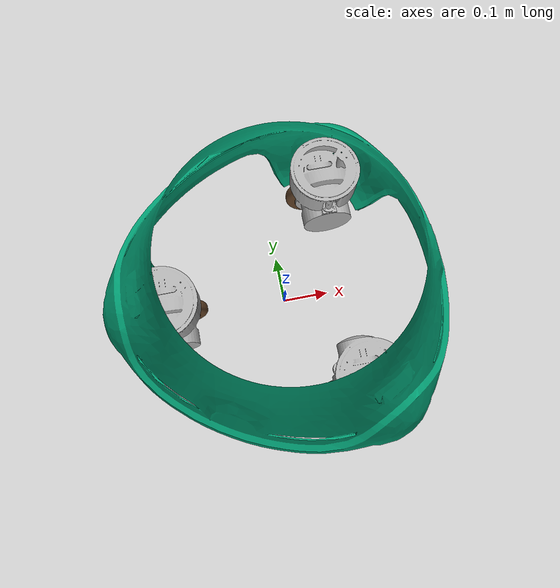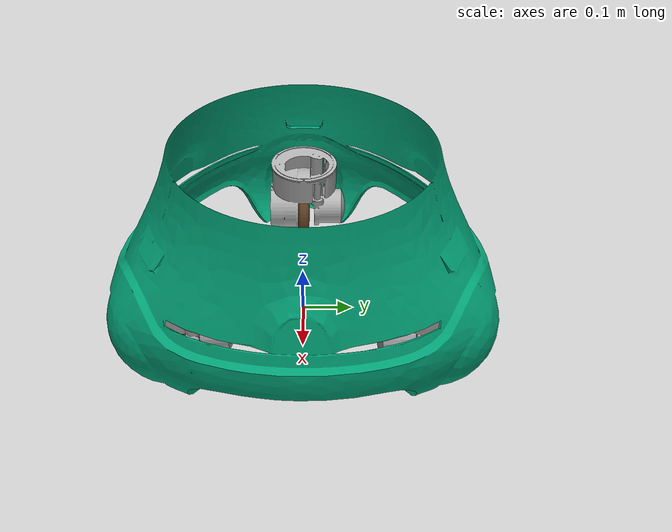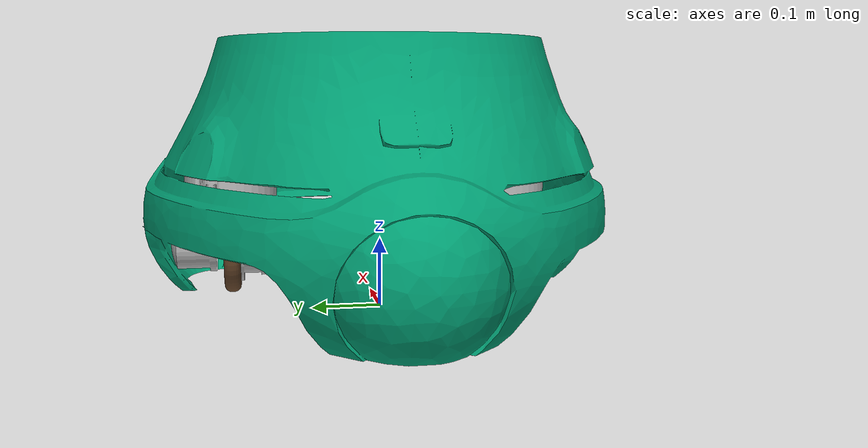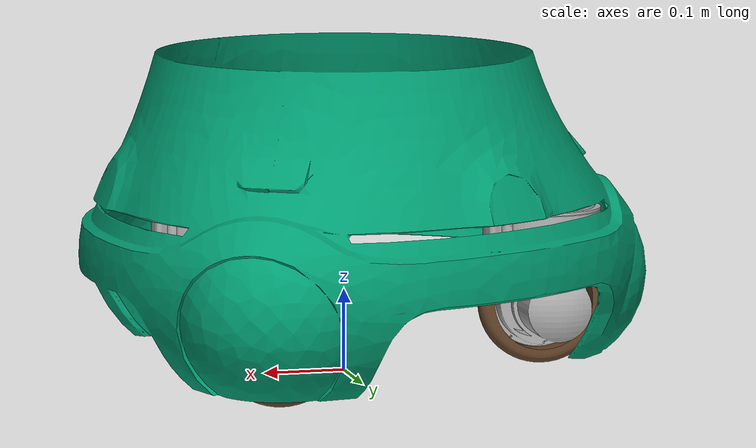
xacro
<?xml version="1.0"?>
<robot xmlns:xacro="http://www.ros.org/wiki/xacro"
       name="cob4-6" >

  <!-- common stuff -->
  <xacro:include filename="$(find simulator_setup)/robot/cob4/cob_description/urdf/common.xacro" />
  <xacro:include filename="$(find simulator_setup)/robot/cob4/cob_description/urdf/materials.urdf.xacro" />

  <!-- calibration -->
  <xacro:include filename="$(find simulator_setup)/robot/cob4/robots/cob4-6/urdf/properties.urdf.xacro" />

  <!-- base -->
  <xacro:include filename="$(find simulator_setup)/robot/cob4/cob_description/urdf/cob4_base/base.urdf.xacro" />

  <!-- composition of the robot -->
  <xacro:base name="base"/>

</robot>

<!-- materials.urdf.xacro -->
<robot xmlns:xacro="http://www.ros.org/wiki/xacro">

  <material name="IPA/LightGrey">
    <color rgba="0.7 0.7 0.7 1.0"/>
  </material>

  <material name="IPA/DarkGrey">
    <color rgba="0.4 0.4 0.4 1.0"/>
  </material>

  <material name="IPA/Black">
    <color rgba="0.0 0.0 0.0 1.0"/>
  </material>

  <material name="IPA/Metall">
    <color rgba="0.7 0.7 0.7 1.0"/>
  </material>

  <material name="IPA/YellowRubber">
    <color rgba="0.4 0.27 0.16 1.0"/>
  </material>

  <material name="IPA/Orange">
    <color rgba="1.0 0.4 0.0 1.0"/>
  </material>

  <material name="IPA/Blue">
    <color rgba="0.0 0.0 0.5 1.0"/>
  </material>

</robot>

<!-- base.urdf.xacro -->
<robot xmlns:xacro="http://www.ros.org/wiki/xacro">

  <xacro:include filename="$(find simulator_setup)/robot/cob4/cob_description/urdf/cob4_base/base.gazebo.xacro" />

  <!-- drive_wheel module -->
  <xacro:include filename="$(find simulator_setup)/robot/cob4/cob_description/urdf/drive_wheel/drive_wheel.urdf.xacro" />

  <!-- properties -->
  <xacro:property name="caster_offset_x" value="0.24844" />  <!--modify here-->
  <xacro:property name="caster_offset_y" value="0.21515" />
  <xacro:property name="caster_offset_z" value="0.0782" />

  <xacro:property name="base_mass" value="100" />

  <xacro:macro name="base" params="name tricycle_mode:=false forward:=true">

    <xacro:property name="drive_vel" value="19.95" />
    <xacro:property name="steer_vel" value="12.00" /> <!-- Controller: 10.0, Driver: 12.0, Elmo: 15.0 -->

    <xacro:if value="${tricycle_mode}">
      <link name="${name}_pivot_link"/>

      <xacro:if value="${forward}">
        <joint name="${name}_pivot_joint" type="fixed">
          <origin xyz="${-caster_offset_x/2} 0.0 0.0" rpy="0 0 0" />
          <parent link="${name}_pivot_link"/>
          <child link="${name}_footprint" />
        </joint>
      </xacro:if>
      <xacro:unless value="${forward}">
        <joint name="${name}_pivot_joint" type="fixed">
          <origin xyz="${caster_offset_x/2} 0.0 0.0" rpy="0 0 0" />
          <parent link="${name}_pivot_link"/>
          <child link="${name}_footprint" />
        </joint>
      </xacro:unless>
    </xacro:if>

    <link name="${name}_footprint"/>

    <joint name="${name}_footprint_joint" type="fixed">
      <origin xyz="0 0 0" rpy="0 0 0" />
      <parent link="${name}_footprint"/>
      <child link="${name}_link" />
    </joint>

    <link name="${name}_link"/>

    <xacro:if value="${forward}">
      <joint name="${name}_chassis_joint" type="fixed">
        <origin xyz="0 0 0" rpy="0 0 0" />
        <parent link="${name}_link"/>
        <child link="${name}_chassis_link" />
      </joint>
    </xacro:if>
    <xacro:unless value="${forward}">
      <joint name="${name}_chassis_joint" type="fixed">
        <origin xyz="0 0 0" rpy="0 0 ${M_PI}" />
        <parent link="${name}_link"/>
        <child link="${name}_chassis_link" />
      </joint>
    </xacro:unless>

    <link name="${name}_chassis_link">
      <inertial>
        <origin xyz="0 0 0" />
        <mass value="${base_mass}" />
        <inertia ixx="5.652232699207" ixy="-0.009719934438" ixz="1.293988226423"
             iyy="5.669473158652" iyz="-0.007379583694" izz="3.683196351726" />
      </inertial>
      <visual>
        <origin xyz="0 0 0" rpy="0 0 0" />
        <geometry>
          <mesh filename="package://simulator_setup/robot/cob4/cob_description/meshes/cob4_base/base.dae"/>
          <!--box size="0.01 0.01 0.01" /-->
        </geometry>
      </visual>
      <collision>
        <origin xyz="0 0 0" rpy="0 0 0" />
        <geometry>
          <mesh filename="package://simulator_setup/robot/cob4/cob_description/meshes/cob4_base/base_collision.stl"/>
          <!--box size="0.01 0.01 0.01" /-->
        </geometry>
      </collision>
    </link>

    <joint name="${name}_charger_joint" type="fixed">
      <origin xyz="0.2992 0.0 0.09089" rpy="0 0 0" />
      <parent link="${name}_chassis_link"/>
      <child link="${name}_charger_link" />
    </joint>

    <link name="${name}_charger_link"/>

    <!-- arrangement of the three drive_wheel modules -->
    <xacro:if value="${tricycle_mode}">
      <xacro:drive_wheel parent="${name}_chassis_link" suffix="fl" passive="true" >
        <origin xyz="${caster_offset_x/2} ${caster_offset_y} ${caster_offset_z}" rpy="0 0 0" />
      </xacro:drive_wheel>
      <xacro:drive_wheel parent="${name}_chassis_link" suffix="b" >
        <origin xyz="${-caster_offset_x} 0.0 ${caster_offset_z}" rpy="0 0 0" />
      </xacro:drive_wheel>
      <xacro:drive_wheel parent="${name}_chassis_link" suffix="fr" passive="true">
        <origin xyz="${caster_offset_x/2} ${-caster_offset_y} ${caster_offset_z}" rpy="0 0 0" />
      </xacro:drive_wheel>
    </xacro:if>

    <xacro:unless value="${tricycle_mode}">
      <xacro:drive_wheel parent="${name}_chassis_link" suffix="fl" >
        <origin xyz="${caster_offset_x/2} ${caster_offset_y} ${caster_offset_z}" rpy="0 0 0" />
      </xacro:drive_wheel>
      <xacro:drive_wheel parent="${name}_chassis_link" suffix="b" >
        <origin xyz="${-caster_offset_x} 0.0 ${caster_offset_z}" rpy="0 0 0" />
      </xacro:drive_wheel>
      <xacro:drive_wheel parent="${name}_chassis_link" suffix="fr" >
        <origin xyz="${caster_offset_x/2} ${-caster_offset_y} ${caster_offset_z}" rpy="0 0 0" />
      </xacro:drive_wheel>
    </xacro:unless>

    <!-- gazebo extensions -->
    <xacro:base_gazebo name="${name}" />

    <!-- ros_control plugin -->
    <gazebo>
      <plugin name="${name}_ros_control" filename="libhwi_switch_gazebo_ros_control.so">
        <robotNamespace>${name}</robotNamespace>
        <filterJointsParam>joint_names</filterJointsParam>
      </plugin>
    </gazebo>

  </xacro:macro>

</robot>

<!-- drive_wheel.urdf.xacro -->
<robot xmlns:xacro="http://www.ros.org/wiki/xacro">

  <xacro:include filename="$(find simulator_setup)/robot/cob4/cob_description/urdf/drive_wheel/drive_wheel.gazebo.xacro" />
  <xacro:include filename="$(find simulator_setup)/robot/cob4/cob_description/urdf/drive_wheel/drive_wheel.transmission.xacro" />

  <xacro:property name="caster_wheel_offset_y" value="0.0" />

  <xacro:property name="caster_mass" value="5.9" />
  <xacro:property name="wheel_mass" value="0.44036" />

  <xacro:macro name="cob_wheel" params="parent suffix reflect drive_vel:=^ passive:=false">

    <xacro:if value="${passive}">
      <joint name="${parent}_${suffix}_wheel_joint" type="continuous">
        <origin xyz="0 ${reflect*caster_wheel_offset_y} 0" rpy="0 0 0" />
        <parent link="${parent}_rotation_link"/>
        <child link="${parent}_${suffix}_wheel_link"/>
        <axis xyz="0 1 0" />
        <safety_controller  k_velocity="10" />
        <limit effort="0.0" velocity="${drive_vel}"/>
        <dynamics damping="0.0" friction="0.0" />
      </joint>
    </xacro:if>
    <xacro:unless value="${passive}">
      <joint name="${parent}_${suffix}_wheel_joint" type="continuous">
        <origin xyz="0 ${reflect*caster_wheel_offset_y} 0" rpy="0 0 0" />
        <parent link="${parent}_rotation_link"/>
        <child link="${parent}_${suffix}_wheel_link"/>
        <axis xyz="0 1 0" />
        <safety_controller  k_velocity="10" />
        <limit effort="100" velocity="${drive_vel}"/>
        <dynamics damping="0.0" friction="0.0" />
      </joint>
    </xacro:unless>

    <link name="${parent}_${suffix}_wheel_link">
      <inertial>
        <origin xyz="0 0 0" />
        <mass value="${wheel_mass}" />
        <inertia  ixx="0.012411765597" ixy="-0.000711733678" ixz="0.00050272983"
                  iyy="0.015218160428" iyz="-0.000004273467" izz="0.011763977943" />
      </inertial>
      <visual>
        <geometry>
          <mesh filename="package://simulator_setup/robot/cob4/cob_description/meshes/drive_wheel/wheel.dae"/>
        </geometry>
      </visual>
      <collision>
        <geometry>
          <mesh filename="package://simulator_setup/robot/cob4/cob_description/meshes/drive_wheel/wheel.stl"/>
        </geometry>
      </collision>
    </link>

    <!-- extensions -->
    <xacro:cob_wheel_gazebo parent="${parent}" suffix="${suffix}" />
    <xacro:unless value="${passive}">
      <xacro:cob_wheel_transmission parent="${parent}" suffix="${suffix}" reflect="${reflect}" />
    </xacro:unless>

  </xacro:macro>

  <!-- Macro for Caster hub only -->
  <xacro:macro name="cob_caster_hub" params="*origin parent suffix steer_vel:=^ passive:=false" >

    <xacro:if value="${passive}">
      <joint name="${suffix}_rotation_joint" type="fixed">
        <xacro:insert_block name="origin" />
        <parent link="${parent}"/>
        <child link="${suffix}_rotation_link" />
      </joint>
    </xacro:if>
    <xacro:unless value="${passive}">
      <joint name="${suffix}_rotation_joint" type="continuous">
        <xacro:insert_block name="origin" />
        <parent link="${parent}"/>
        <child link="${suffix}_rotation_link" />
        <axis xyz="0 0 1" />
        <safety_controller  k_velocity="10" />
        <limit effort="100" velocity="${steer_vel}"/>
        <dynamics damping="0.0" friction="0.0" />
      </joint>
    </xacro:unless>

    <link name="${suffix}_rotation_link">
      <inertial>
        <origin xyz="0 0 0" />
        <mass value="${caster_mass}"/>
        <inertia  ixx="0.04" ixy="-0.0007" ixz="0.0"
                  iyy="0.02" iyz="-0.000004" izz="0.05" />
      </inertial>
      <visual>
        <geometry>
          <mesh filename="package://simulator_setup/robot/cob4/cob_description/meshes/drive_wheel/caster.stl"/>
        </geometry>
        <material name="IPA/LightGrey" />
      </visual>
      <collision>
        <geometry>
          <box size="0.001 0.001 0.001" />
        </geometry>
      </collision>
    </link>

    <!-- extensions -->
    <xacro:unless value="${passive}">
      <xacro:cob_caster_transmission suffix="${suffix}" />
    </xacro:unless>

  </xacro:macro>

  <xacro:macro name="drive_wheel" params="*origin parent suffix drive_vel:=^|100 steer_vel:=^|100 passive:=false">

    <xacro:cob_caster_hub parent="${parent}" suffix="${suffix}_caster" passive="${passive}" >
      <xacro:insert_block name="origin" />
    </xacro:cob_caster_hub>

    <xacro:cob_wheel parent="${suffix}_caster" suffix="r" reflect="-1"  passive="${passive}" />

    <!-- extensions -->
    <xacro:cob_caster_gazebo suffix="${suffix}" />
  </xacro:macro>

</robot>
